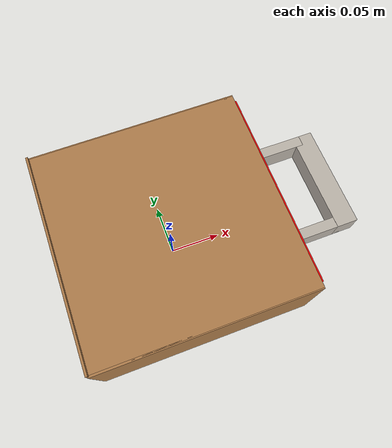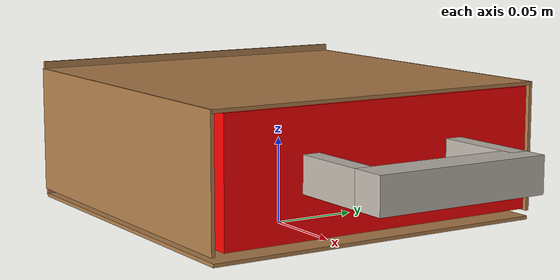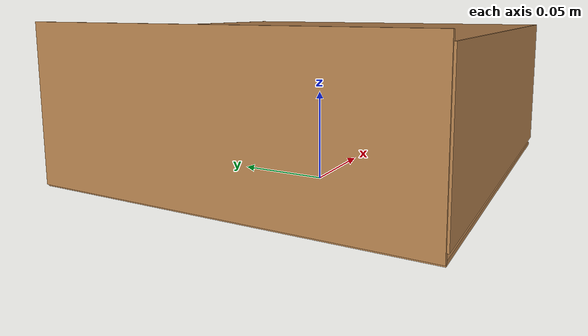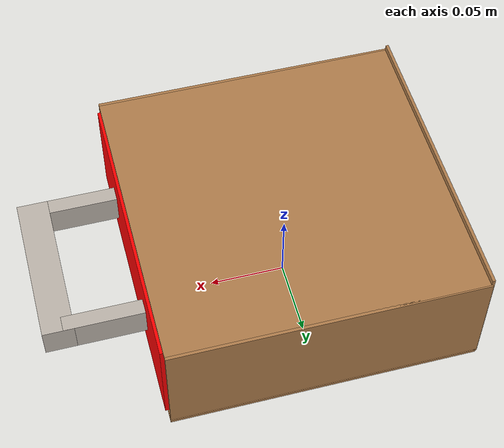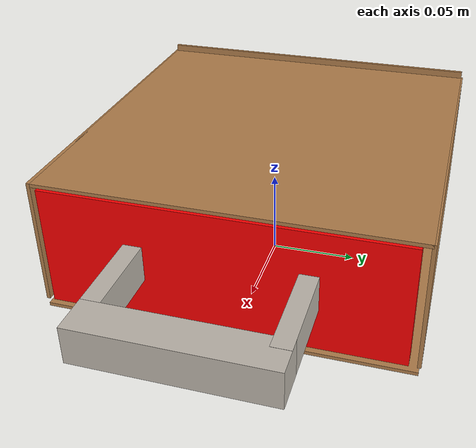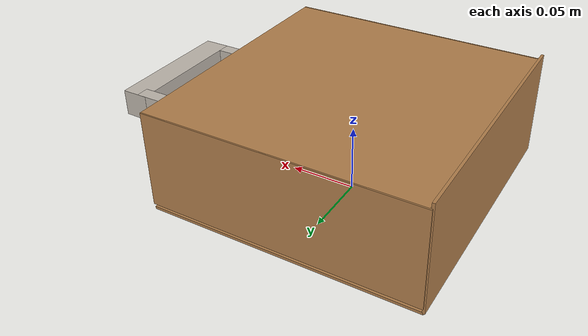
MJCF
<mujoco model="drawer">
  <compiler angle="radian" autolimits="true" />
  <option impratio="10" />
  <default>
    <default class="visual">
      <geom type="mesh" contype="0" conaffinity="0" group="2" />
    </default>
    <default class="collision">
      <geom type="mesh" group="3" friction= "15 15 15"/>
    </default>
  </default>

  <asset>
    <texture type="2d" name="drawer_wood" file="textures/wood3.png"/>
    <material name="wood" texture="drawer_wood" />
    <texture type="2d" name="metal" file="textures/metal4.png"/>
    <material name="drawer_handle" texture="metal" />
    <material name="bottom" rgba="1 0 0 1" reflectance="0" specular="0.0" shininess="0" />
    <material name="mid" rgba="0 1 0 1" reflectance="0" specular="0.0" shininess="0" />
    <material name="top" rgba="0 0 1 1" reflectance="0" specular="0.0" shininess="0" />

  </asset>
  <worldbody>
    <body name="drawer" pos="0.0 0.0 0.0" euler="0 0 0">
      <geom size="0.10 0.001 0.036" pos="0 -0.10 0.05" class="visual" type="box" material="wood" />
      <geom size="0.10 0.001 0.036" pos="0 0.10 0.05" class="visual" type="box" material="wood" />
      <!-- bot -->
      <geom size="0.10 0.10 0.001" pos="0 0 0.01" class="visual" type="box" material="wood" />
      <!-- top -->
      <geom size="0.10 0.10 0.001" pos="0 0 0.085" class="visual" type="box" material="wood" />
      <!-- back -->
      <geom size="0.001 0.10 0.040" pos="-0.10 0 0.05" class="visual" type="box" material="wood" />

      <geom size="0.10 0.001 0.036" pos="0 -0.11 0.05" class="collision" type="box" />
      <geom size="0.10 0.001 0.036" pos="0 0.11 0.05" class="collision" type="box"  />
      <!-- bot -->
      <geom size="0.10 0.10 0.001" pos="0 0 0.00" class="collision" type="box"  />
      <!-- top -->
      <geom size="0.10 0.10 0.001" pos="0 0 0.09" class="collision" type="box"  />
      <!-- back -->
      <geom size="0.001 0.10 0.040" pos="-0.10 0 0.05" class="collision" type="box"  />

      <body name="bottom_drawer" pos="0.03 0 0.05">
        <joint name="bottom_drawer_slide" type="slide" axis="1 0 0" limited="true" range="0 0.3"
          damping="50.0" frictionloss="1.0" />

        <!-- bottom -->
        <geom size="0.07 0.07 0.005" class="visual" type="box" pos="0 0 -0.02" material="wood" />
        <!-- left and right -->
        <geom size="0.07 0.005 0.03" class="visual" type="box" pos="0 0.07 0" material="wood" />
        <geom size="0.07 0.005 0.03" class="visual" type="box" pos="0 -0.07 0" material="wood" />
        <!-- front and back -->
        <geom size="0.005 0.095 0.034" class="visual" type="box" pos="0.067 0 0" material="bottom" />
        <geom size="0.005 0.095 0.034" class="visual" type="box" pos="-0.067 0 0" material="wood" />

        <!-- bottom -->
        <geom size="0.07 0.07 0.005" class="collision" type="box" pos="0 0 -0.02" />
        <!-- left and right -->
        <geom size="0.07 0.005 0.03" class="collision" type="box" pos="0 0.07 0"  />
        <geom size="0.07 0.005 0.03" class="collision" type="box" pos="0 -0.07 0"  />
        <!-- front and back -->
        <geom size="0.005 0.095 0.034" class="collision" type="box" pos="0.067 0 0"  />
        <geom size="0.005 0.095 0.034" class="collision" type="box" pos="-0.067 0 0" />

        <body name="bottom_drawer_handle" pos="0.126 0 0" euler="1.57 0 0">
          <geom size="0.01 0.01 0.05" class="visual" type="box" material="drawer_handle" />
          <geom size="0.01 0.01 0.05" class="collision" type="box" />
          <site name="pull_site_0" pos="0 0. 0.0" euler="0 0 0" group="4"/>
          <site name="pull_site_1" pos="0 0. 0" euler="0 0 0" group="4"/>
          <site name="pull_site_2" pos="0 0. 0.0" euler="0 0 0" group="4"/>
        </body>
        <body name="bottom_drawer_side_handle_right" pos="0.09 0.045 0" euler="1.57 0 0">
          <geom size="0.033 0.01 0.005" class="visual" type="box" material="drawer_handle" />
          <geom size="0.033 0.01 0.005" class="collision" type="box" />
        </body>
        <body name="bottom_drawer_side_handle_left" pos="0.09 -0.045 0" euler="1.57 0 0">
          <geom size="0.033 0.01 0.005" class="visual" type="box" material="drawer_handle" />
          <geom size="0.033 0.01 0.005" class="collision" type="box" />
        </body>
      </body>

    </body>

  </worldbody>
</mujoco>
